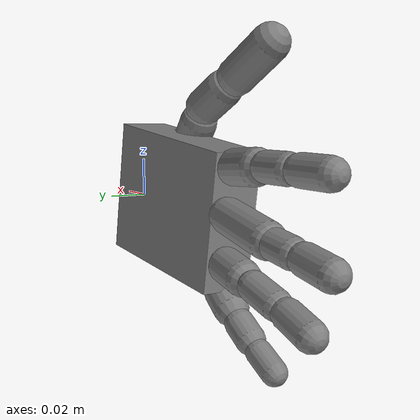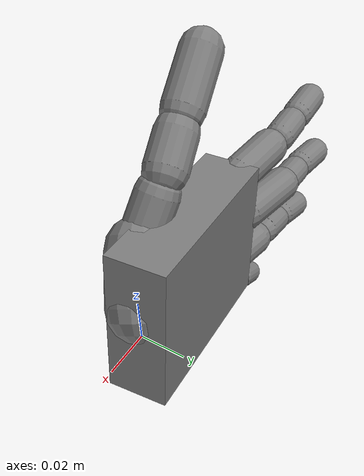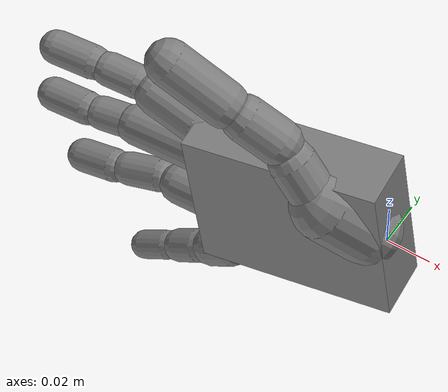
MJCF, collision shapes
<mujoco model="MANO_right">

    <include file="assets.xml"/>

    <include file="actuators.xml"/>

    <worldbody>
        <light name="light" pos="0 0 1" />
        <camera name="fixed" pos="0 -1.3 .5" xyaxes="1 0 0 0 1 2" />
        <include file="body.xml"/>
    </worldbody>

</mujoco>

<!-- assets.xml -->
<mujoco model="MANO_right">

    <default class="main">
        <default class="MANO_right">
            <joint damping=".1" />
            <position kp="1" />
            <geom density="800" />

            <default class="visual">
                <geom type="mesh" contype="0" conaffinity="0" group="2" material="hand_color" />
            </default>

            <default class="collision">
                <geom group="3" type="capsule" mass="0" />
            </default>

            <default class="trans">
                <position ctrlrange="-10 10" />
            </default>
        </default>
    </default>

    <asset>
        <material name="hand_color" rgba="0.91796875 0.765 0.5234 1" />

        <mesh file="geom_assets/right_wrist.obj" />
        <mesh file="geom_assets/right_index1.obj" />
        <mesh file="geom_assets/right_index2.obj" />
        <mesh file="geom_assets/right_index3.obj" />
        <mesh file="geom_assets/right_middle1.obj" />
        <mesh file="geom_assets/right_middle2.obj" />
        <mesh file="geom_assets/right_middle3.obj" />
        <mesh file="geom_assets/right_pinky1.obj" />
        <mesh file="geom_assets/right_pinky2.obj" />
        <mesh file="geom_assets/right_pinky3.obj" />
        <mesh file="geom_assets/right_ring1.obj" />
        <mesh file="geom_assets/right_ring2.obj" />
        <mesh file="geom_assets/right_ring3.obj" />
        <mesh file="geom_assets/right_thumb1.obj" />
        <mesh file="geom_assets/right_thumb2.obj" />
        <mesh file="geom_assets/right_thumb3.obj" />
    </asset>

    <contact>
        <exclude body1="wrist" body2="index1"/>
        <exclude body1="wrist" body2="middle1"/>
        <exclude body1="wrist" body2="pinky1"/>
        <exclude body1="wrist" body2="ring1"/>
        <exclude body1="wrist" body2="thumb1"/>

        <exclude body1="index1" body2="index2"/>
        <exclude body1="index2" body2="index3"/>

        <exclude body1="middle1" body2="middle2"/>
        <exclude body1="middle2" body2="middle3"/>

        <exclude body1="pinky1" body2="pinky2"/>
        <exclude body1="pinky2" body2="pinky3"/>

        <exclude body1="ring1" body2="ring2"/>
        <exclude body1="ring2" body2="ring3"/>

        <exclude body1="thumb1" body2="thumb2"/>
        <exclude body1="thumb2" body2="thumb3"/>
    </contact>

</mujoco>

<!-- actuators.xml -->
<mujoco model="MANO_right">

    <actuator>
        <position name="ratx" joint="RootTx" class="trans" kp="20"/>
        <position name="raty" joint="RootTy" class="trans" kp="20"/>
        <position name="ratz" joint="RootTz" class="trans" kp="20"/>
        <motor name="rarx" joint="RootR" gear="1 0 0"/>
        <motor name="rary" joint="RootR" gear="0 1 0"/>
        <motor name="rarz" joint="RootR" gear="0 0 1"/>
        <motor name="t1arx" joint="Thumb1R" gear="1 0 0"/>
        <motor name="t1ary" joint="Thumb1R" gear="0 1 0"/>
        <motor name="t1arz" joint="Thumb1R" gear="0 0 1"/>
        <motor name="t2arx" joint="Thumb2R" gear="1 0 0"/>
        <motor name="t2ary" joint="Thumb2R" gear="0 1 0"/>
        <motor name="t2arz" joint="Thumb2R" gear="0 0 1"/>
        <motor name="t3arx" joint="Thumb3R" gear="1 0 0"/>
        <motor name="t3ary" joint="Thumb3R" gear="0 1 0"/>
        <motor name="t3arz" joint="Thumb3R" gear="0 0 1"/>
        <motor name="rf1arx" joint="Ring1R" gear="1 0 0"/>
        <motor name="rf1ary" joint="Ring1R" gear="0 1 0"/>
        <motor name="rf1arz" joint="Ring1R" gear="0 0 1"/>
        <motor name="rf2arx" joint="Ring2R" gear="1 0 0"/>
        <motor name="rf2ary" joint="Ring2R" gear="0 1 0"/>
        <motor name="rf2arz" joint="Ring2R" gear="0 0 1"/>
        <motor name="rf3arx" joint="Ring3R" gear="1 0 0"/>
        <motor name="rf3ary" joint="Ring3R" gear="0 1 0"/>
        <motor name="rf3arz" joint="Ring3R" gear="0 0 1"/>
        <motor name="p1arx" joint="Pinky1R" gear="1 0 0"/>
        <motor name="p1ary" joint="Pinky1R" gear="0 1 0"/>
        <motor name="p1arz" joint="Pinky1R" gear="0 0 1"/>
        <motor name="p2arx" joint="Pinky2R" gear="1 0 0"/>
        <motor name="p2ary" joint="Pinky2R" gear="0 1 0"/>
        <motor name="p2arz" joint="Pinky2R" gear="0 0 1"/>
        <motor name="p3arx" joint="Pinky3R" gear="1 0 0"/>
        <motor name="p3ary" joint="Pinky3R" gear="0 1 0"/>
        <motor name="p3arz" joint="Pinky3R" gear="0 0 1"/>
        <motor name="m1arx" joint="Middle1R" gear="1 0 0"/>
        <motor name="m1ary" joint="Middle1R" gear="0 1 0"/>
        <motor name="m1arz" joint="Middle1R" gear="0 0 1"/>
        <motor name="m2arx" joint="Middle2R" gear="1 0 0"/>
        <motor name="m2ary" joint="Middle2R" gear="0 1 0"/>
        <motor name="m2arz" joint="Middle2R" gear="0 0 1"/>
        <motor name="m3arx" joint="Middle3R" gear="1 0 0"/>
        <motor name="m3ary" joint="Middle3R" gear="0 1 0"/>
        <motor name="m3arz" joint="Middle3R" gear="0 0 1"/>
        <motor name="i1arx" joint="Index1R" gear="1 0 0"/>
        <motor name="i1ary" joint="Index1R" gear="0 1 0"/>
        <motor name="i1arz" joint="Index1R" gear="0 0 1"/>
        <motor name="i2arx" joint="Index2R" gear="1 0 0"/>
        <motor name="i2ary" joint="Index2R" gear="0 1 0"/>
        <motor name="i2arz" joint="Index2R" gear="0 0 1"/>
        <motor name="i3arx" joint="Index3R" gear="1 0 0"/>
        <motor name="i3ary" joint="Index3R" gear="0 1 0"/>
        <motor name="i3arz" joint="Index3R" gear="0 0 1"/>
    </actuator>

</mujoco>

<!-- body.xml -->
<mujoco model="MANO_right">

    <body name="wrist" gravcomp="1">
        <joint name="RootTx" axis="1 0 0" type="slide" damping="1" />
        <joint name="RootTy" axis="0 1 0" type="slide" damping="1" />
        <joint name="RootTz" axis="0 0 1" type="slide" damping="1" />
        <joint name="RootR" type="ball" />
        <inertial
            mass="0.2621651489812583"
            pos="-0.03428792862784619 -0.001983360201199018 4.859569785971209e-05"
            fullinertia="0.00013912170083065 0.000297873039439277 0.0002243946637740311 -1.155307773191229e-05 9.671338918447545e-07 -1.049928211703001e-06"
        />
        <geom class="visual" mesh="right_wrist"
            pos="-0.0956699401140213 -0.006383428350090981 -0.006186304613947868" />
        <geom class="collision" size="0.015 0.01178445138"
            pos="-0.0144538301974535 -0.009313400834798813 0.01548770722001791"
            quat="0.913582 0.220263 -0.341835 2.45984e-13" />
        <geom class="collision" type="box" size="0.0439 0.0135 0.035"
            pos="-0.03922105953097343 -0.003785171080380678 -0.0006308349594473838"
            quat="0.996311 0.00681974 -0.0706646 0.0482078" />

        <!-- Thumb -->
        <body name="thumb1" gravcomp="1"
            pos="-0.02408971637487411 -0.01552233379334211 0.02581284381449223">
            <joint name="Thumb1R" type="ball" />
            <inertial
                mass="0.01389095525951898"
                pos="-0.005365142091468073 -0.002576591731301335 0.01297582060630504"
                fullinertia="1.284009306496808e-06 1.807529504286183e-06 1.856666870777373e-06 -1.454644559940222e-07 1.572922643450275e-07 -3.475811205794311e-07"
            />
            <geom class="visual" mesh="right_thumb1"
                pos="-0.07158022373914719 0.009138905443251133 -0.03199914842844009" />
            <geom class="collision" size="0.01 0.0103942164"
                pos="-0.006628209725022316 0.0003008996718563139 0.008001001551747322"
                quat="0.940679 -0.0153872 -0.338948 -7.02563e-17" />
            <body name="thumb2" gravcomp="1"
                pos="-0.01963324472308159 0.0008912868797779083 0.0236995555460453">
                <joint name="Thumb2R" type="ball" />
                <inertial
                    mass="0.008175178965760945"
                    pos="-0.01075580107062461 -0.002345119908563989 0.008481227041064993"
                    fullinertia="4.497509026165561e-07 6.380552594404862e-07 6.580969996922209e-07 -3.182897992888485e-08 5.071783866382185e-08 2.504411759822494e-08"
                />
                <geom class="visual" mesh="right_thumb2"
                    pos="-0.0519469790160656 0.008247618563473225 -0.0556987039744854" />
                <geom class="collision" size="0.01 0.00854709453"
                    pos="-0.007008775603026152 -0.00171387754380703 0.004581758752465248"
                    quat="0.876373 0.114404 -0.467848 9.71445e-17" />
                <body name="thumb3" gravcomp="1"
                    pos="-0.02221773564815521 -0.005432971753180027 0.01452412083745003">
                    <joint name="Thumb3R" type="ball" />
                    <inertial
                        mass="0.00747772344623321"
                        pos="-0.01179746517184554 -0.002270360268563636 0.009189612105652695"
                        fullinertia="4.504282205664598e-07 6.644178756137688e-07 5.591522617414576e-07 -4.038463243261303e-08 1.721710210247788e-07 4.827619220538332e-08"
                    />
                    <geom class="visual" mesh="right_thumb3"
                        pos="-0.02972924336791039 0.01368059031665325 -0.07022282481193542" />
                    <geom class="collision" size="0.01 0.01399016533"
                        pos="-0.01142392981416996 -0.002460023821868162 0.007691998220689819"
                        quat="0.880288 0.0998761 -0.463808 3.19189e-16" />
                </body>
            </body>
        </body>

        <!-- Ring finger -->
        <body name="ring1" gravcomp="1"
            pos="-0.08173556625843048 -0.003957420587539673 -0.02667319029569626">
            <joint name="Ring1R" type="ball" />
            <inertial
                mass="0.007566219384225672"
                pos="-0.01229362562996941 0.002478270156332958 -0.0006989646432877111"
                fullinertia="3.725577298656618e-07 5.796986474490755e-07 5.795735664698766e-07 -5.569118446057833e-09 -4.869270235624241e-08 -9.515256953178793e-09"
            />
            <geom class="visual" mesh="right_ring1"
                pos="-0.01393437385559082 -0.002426007762551308 0.02048688568174839" />
            <geom class="collision" size="0.008999999999999999 0.00892190818"
                pos="-0.009739752858877182 0.000711024331394583 -0.001753832912072539"
                quat="0.641575 -0.0558486 -0.765025 -3.05311e-16" />
            <body name="ring2" gravcomp="1"
                pos="-0.02831427380442619 0.002067007124423981 -0.005098538473248482">
                <joint name="Ring2R" type="ball" />
                <inertial
                    mass="0.005029987599785342"
                    pos="-0.01120108747821226 -0.0003899902702547342 -0.004202645694517223"
                    fullinertia="1.789927406775117e-07 3.470513046564063e-07 3.275264948956767e-07 -1.576526576054183e-08 -4.868308432861158e-08 -6.36215768749042e-09"
                />
                <geom class="visual" mesh="right_ring2"
                    pos="0.01437989994883537 -0.004493014886975288 0.02558542415499687" />
                <geom class="collision" size="0.0075 0.0086429372"
                    pos="-0.008201702497899532 -0.0005886515136808157 -0.002661943435668945"
                    quat="0.588222 0.057893 -0.806625 -5.55112e-17" />
                <body name="ring3" gravcomp="1"
                    pos="-0.02352051809430122 -0.001688111573457718 -0.007633816450834274">
                    <joint name="Ring3R" type="ball" />
                    <inertial
                        mass="0.00288134705822775"
                        pos="-0.01199416619961559 -8.532674859326739e-05 -0.003519108567331522"
                        fullinertia="6.96075106575108e-08 1.392429752399229e-07 1.255906757718e-07 3.500704841988125e-09 -1.945298534824255e-08 -1.229084363579012e-09"
                    />
                    <geom class="visual" mesh="right_ring3"
                        pos="0.0379004180431366 -0.00280490331351757 0.03321924060583115" />
                    <geom class="collision" size="0.0075 0.0090144358"
                        pos="-0.008628424416764247 0.0003032926320860706 -0.002591979665581778"
                        quat="0.596852 -0.0281856 -0.801856 9.02056e-17" />
                </body>
            </body>
        </body>

        <!-- Pinky finger -->
        <body name="pinky1" gravcomp="1"
            pos="-0.06878697872161865 -0.009940328076481819 -0.04320933669805527">
            <joint name="Pinky1R" type="ball" />
            <inertial
                mass="0.00429689371005088"
                pos="-0.007298340700857824 0.001209671288326417 -0.007077038184132051"
                fullinertia="1.681797734422877e-07 2.244614664283673e-07 1.941109395838989e-07 -8.006221661156753e-10 -2.956527084550618e-08 -1.741624467465072e-09"
            />
            <geom class="visual" mesh="right_pinky1"
                pos="-0.02688296139240265 0.003556899726390839 0.03702303022146225" />
            <geom class="collision" size="0.008999999999999999 0.00605596396"
                pos="-0.004880589433014393 1.773456642695237e-05 -0.003585279919207096"
                quat="0.45165 -0.00324194 -0.892189 -1.12757e-16" />
            <body name="pinky2" gravcomp="1"
                pos="-0.01701441034674644 6.182515062391758e-05 -0.01249878108501434">
                <joint name="Pinky2R" type="ball" />
                <inertial
                    mass="0.002781613790564921"
                    pos="-0.007860466243023591 0.001082534402904419 -0.006184610881384799"
                    fullinertia="8.10232289354825e-08 1.084056993496749e-07 9.615634712802696e-08 -1.827691227174668e-09 -1.49144378232804e-08 -4.39051464243735e-09"
                />
                <geom class="visual" mesh="right_pinky2"
                    pos="-0.009868551045656204 0.003495074575766921 0.04952181130647659" />
                <geom class="collision" size="0.0075 0.00572344303"
                    pos="-0.004793046973645687 -0.0002087832690449432 -0.003121043555438519"
                    quat="0.476808 0.038253 -0.878175 -2.22045e-16" />
                <body name="pinky3" gravcomp="1"
                    pos="-0.01586690172553062 -0.0006911561358720064 -0.0103319026529789">
                    <joint name="Pinky3R" type="ball" />
                    <inertial
                        mass="0.001566057855040921"
                        pos="-0.008810483659855921 -0.0009578335233779781 -0.005027785409461583"
                        fullinertia="2.960281534014635e-08 4.43738299343363e-08 3.785476479004187e-08 2.583004582544436e-11 -6.313325860791448e-09 -4.851731346720774e-10"
                    />
                    <geom class="visual" mesh="right_pinky3"
                        pos="0.00599835067987442 0.004186230711638927 0.05985371395945549" />
                    <geom class="collision" size="0.0065 0.00675872644"
                        pos="-0.005771451704418715 -0.0004900273787599806 -0.00348290132177909"
                        quat="0.492281 0.0736398 -0.867316 7.63278e-17" />
                </body>
            </body>
        </body>

        <!-- Middle finger -->
        <body name="middle1" gravcomp="1"
            pos="-0.09466045349836349 -0.001478962600231171 -0.003357539651915431">
            <joint name="Middle1R" type="ball" />
            <inertial
                mass="0.01041232271134444"
                pos="-0.01404093428370029 0.002369654630678607 -0.002975534943670234"
                fullinertia="5.691079252468613e-07 1.201105062575942e-06 1.125634937693622e-06 5.156376283079277e-10 -1.424316691619549e-07 -9.47773545413763e-09"
            />
            <geom class="visual" mesh="right_middle1"
                pos="-0.001009486615657806 -0.00490446574985981 -0.002828764962032437" />
            <geom class="collision" size="0.008999999999999999 0.0183675909"
                pos="-0.0111696794629097 0.0006667306879535317 -0.002003961941227317"
                quat="0.64176 -0.0456961 -0.765543 -2.35922e-16" />
            <body name="middle2" gravcomp="1"
                pos="-0.03118266724050045 0.001861328259110451 -0.005594509653747082">
                <joint name="Middle2R" type="ball" />
                <inertial
                    mass="0.004134916987366405"
                    pos="-0.01308363736227514 -0.0002096533445448924 -0.002215308889885086"
                    fullinertia="1.495346703662589e-07 2.028406094796937e-07 1.912160753708021e-07 -1.473680795106371e-08 -8.546669747643379e-09 -5.092232749750542e-09"
                />
                <geom class="visual" mesh="right_middle2"
                    pos="0.03017318062484264 -0.006765794008970261 0.002765744691714644" />
                <geom class="collision" size="0.0075 0.00788775473"
                    pos="-0.007762070745229721 -0.0004243212752044201 -0.00133674219250679"
                    quat="0.64441 0.0417397 -0.76354 -2.77556e-17" />
                <body name="middle3" gravcomp="1"
                    pos="-0.02290463633835316 -0.00125210452824831 -0.003944513387978077">
                    <joint name="Middle3R" type="ball" />
                    <inertial
                        mass="0.003016592369827251"
                        pos="-0.01341204096573574 -0.0001321703788337673 -0.002081687520704607"
                        fullinertia="7.966680664410979e-08 1.371344583955573e-07 1.250475443711313e-07 8.157506841560311e-09 -1.255883708825473e-08 -1.105336821754682e-09"
                    />
                    <geom class="visual" mesh="right_middle3"
                        pos="0.0530778169631958 -0.005513689480721951 0.006710258312523365" />
                    <geom class="collision" size="0.0075 0.00926838158"
                        pos="-0.009145713945442134 0.0003014557215035537 -0.001472391958602528"
                        quat="0.648513 -0.0250767 -0.76079 2.63678e-16" />
                </body>
            </body>
        </body>

        <!-- Index finger -->
        <body name="index1" gravcomp="1"
            pos="-0.08809725940227509 -0.005200356710702181 0.02068599313497543">
            <joint name="Index1R" type="ball" />
            <inertial
                mass="0.008858013426270924"
                pos="-0.01841049225853478 0.003372971502468173 0.001485845999724966"
                fullinertia="4.441778858945276e-07 7.994890796984332e-07 8.307439886266915e-07 2.33849326666686e-08 3.18170695566891e-08 1.643036507892791e-10"
            />
            <geom class="visual" mesh="right_index1"
                pos="-0.007572680711746216 -0.0011830716393888 -0.0268722977489233" />
            <geom class="collision" size="0.008999999999999999 0.01199924926"
                pos="-0.0118830343708396 0.001457922742702067 0.0008061919361352921"
                quat="0.730475 -0.0831659 -0.677857 -1.10084e-12" />
            <body name="index2" gravcomp="1"
                pos="-0.03267890214920044 0.004009355790913105 0.002217065542936325">
                <joint name="Index2R" type="ball" />
                <inertial
                    mass="0.004299645893867725"
                    pos="-0.0112130878785661 -0.0001671420303115973 2.323359852935206e-05"
                    fullinertia="1.542203558958309e-07 2.236098862551748e-07 2.046085210625759e-07 -8.907325254730415e-09 -1.088989905119781e-08 3.828831971148394e-09"
                />
                <geom class="visual" mesh="right_index2"
                    pos="0.02510622143745422 -0.005192427430301905 -0.02908936329185963" />
                <geom class="collision" size="0.0075 0.00734710801"
                    pos="-0.007334427908062935 -0.0004298262647353113 -3.777751408051699e-05"
                    quat="0.705287 0.0414745 -0.707708 1.37995e-12" />
                <body name="index3" gravcomp="1"
                    pos="-0.02215591073036194 -0.001298423390835524 -0.000114118680357933">
                    <joint name="Index3R" type="ball" />
                    <inertial
                        mass="0.003095705087766235"
                        pos="-0.01113279506587959 -0.0005018619283154242 -0.0001430962173195431"
                        fullinertia="7.464031657849734e-08 1.572361421002517e-07 1.431567893291516e-07 1.575984661878876e-09 -7.061194366437685e-09 -4.29298608964218e-09"
                    />
                    <geom class="visual" mesh="right_index3"
                        pos="0.04726213216781616 -0.003894004039466381 -0.02897524461150169" />
                    <geom class="collision" size="0.0075 0.00902585808"
                        pos="-0.009001294411288496 -0.0006414405166041191 -0.0001771079735335346"
                        quat="0.700135 0.0507524 -0.712205 1.36802e-12" />
                </body>
            </body>
        </body>
    </body>

</mujoco>
